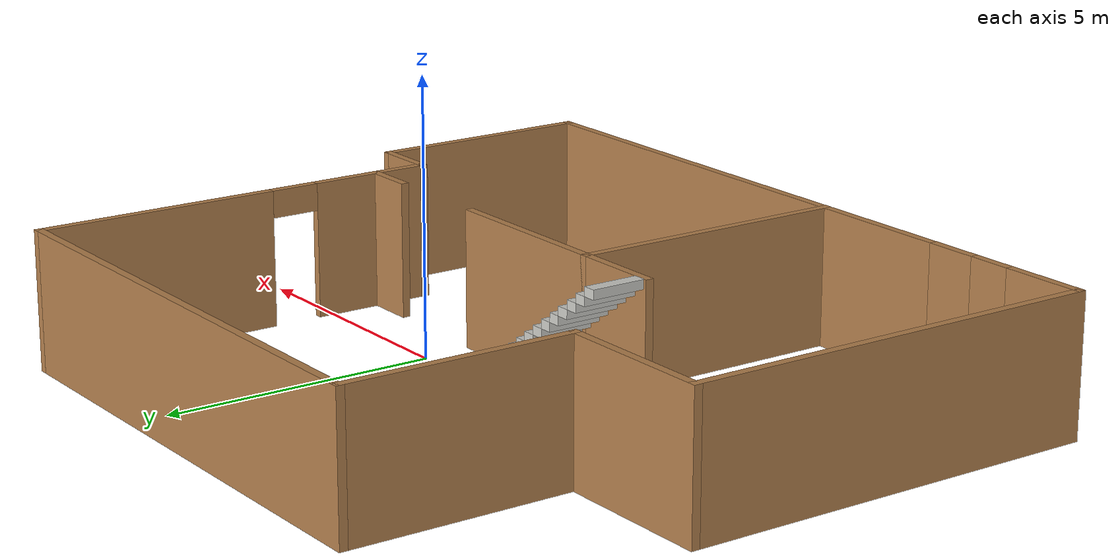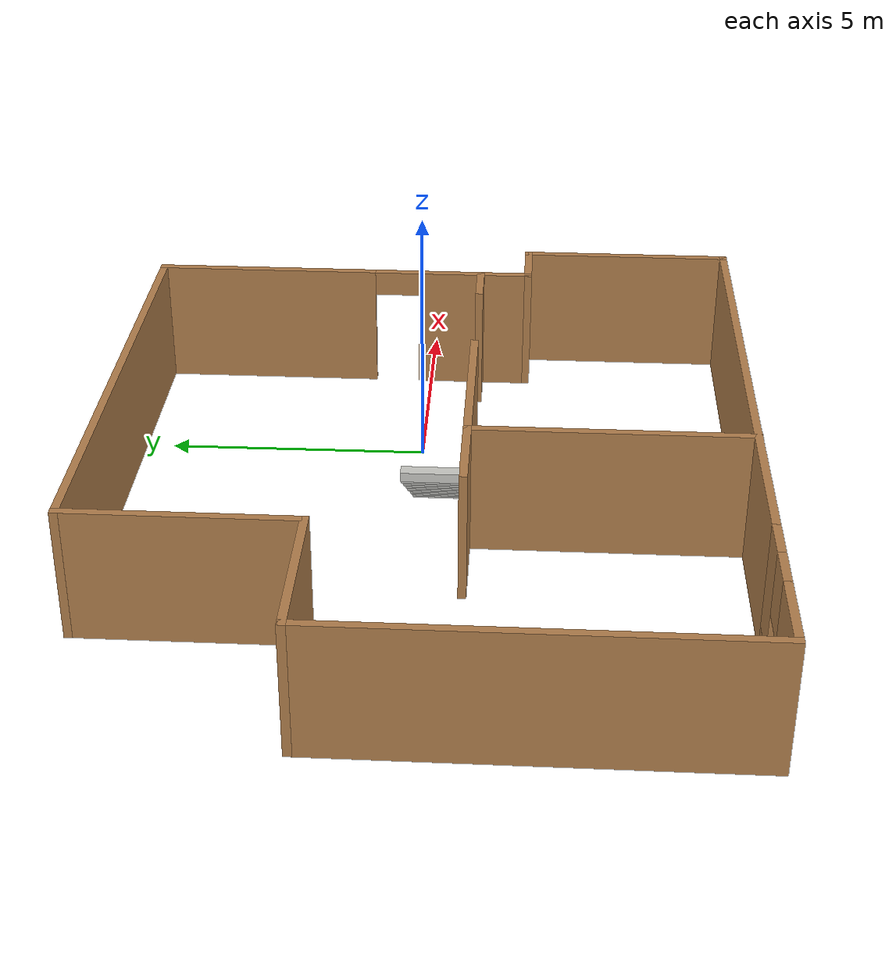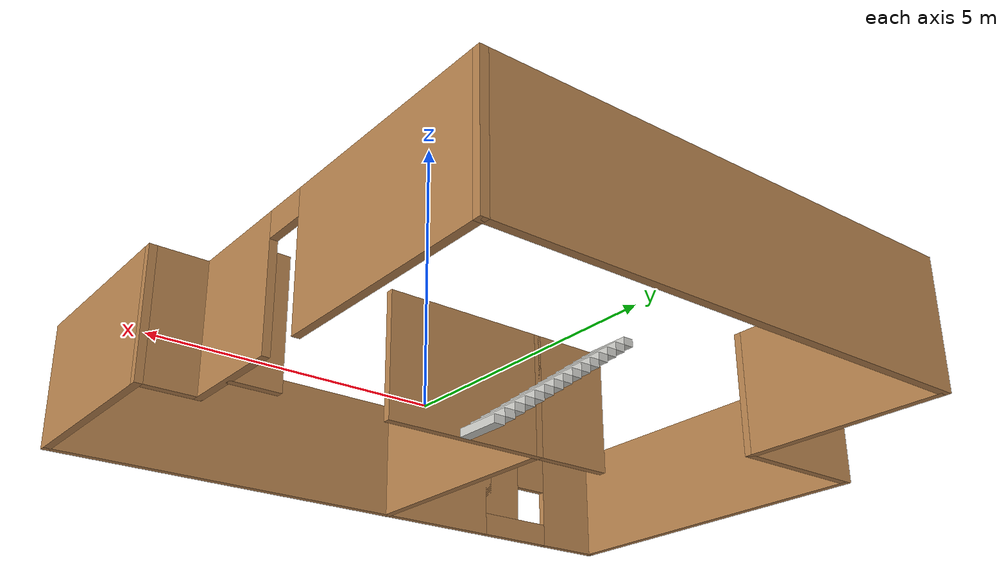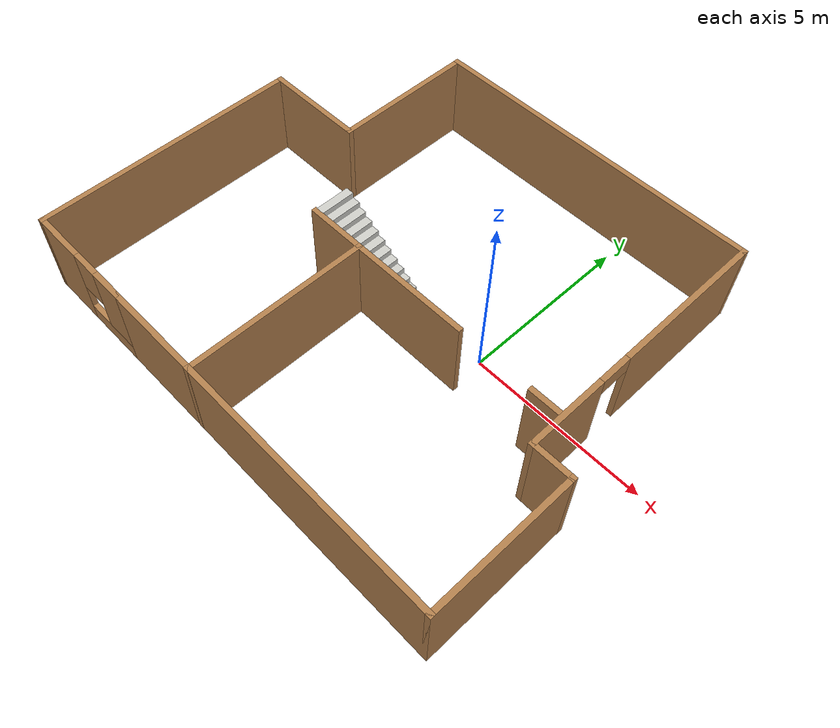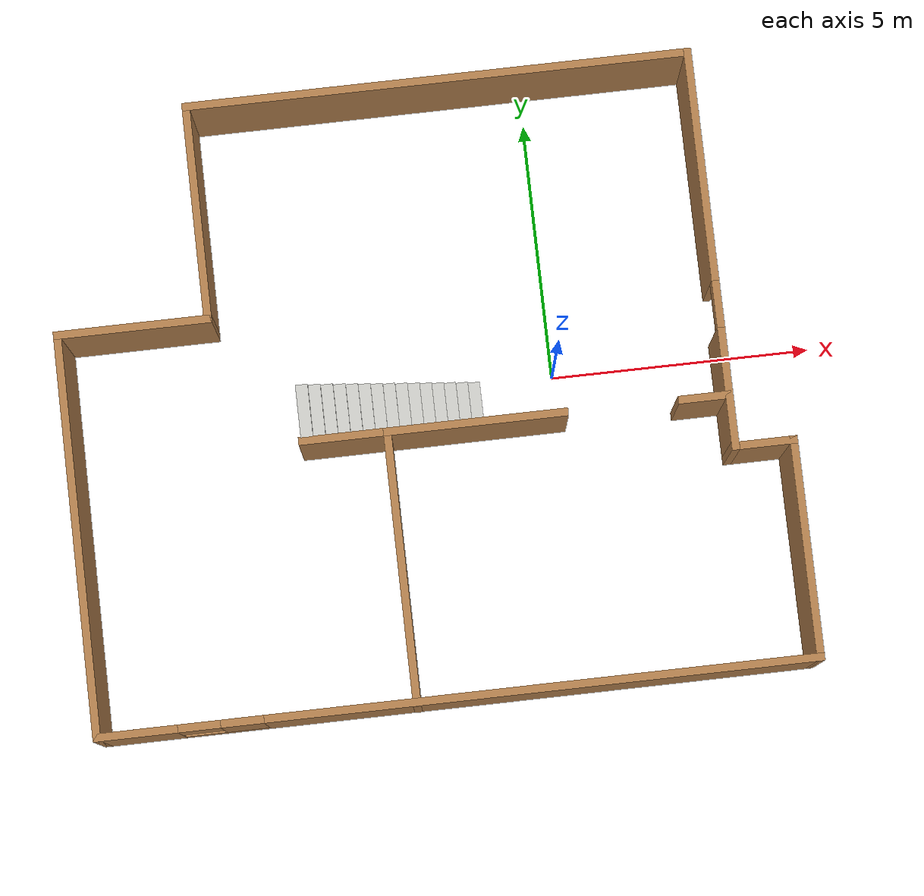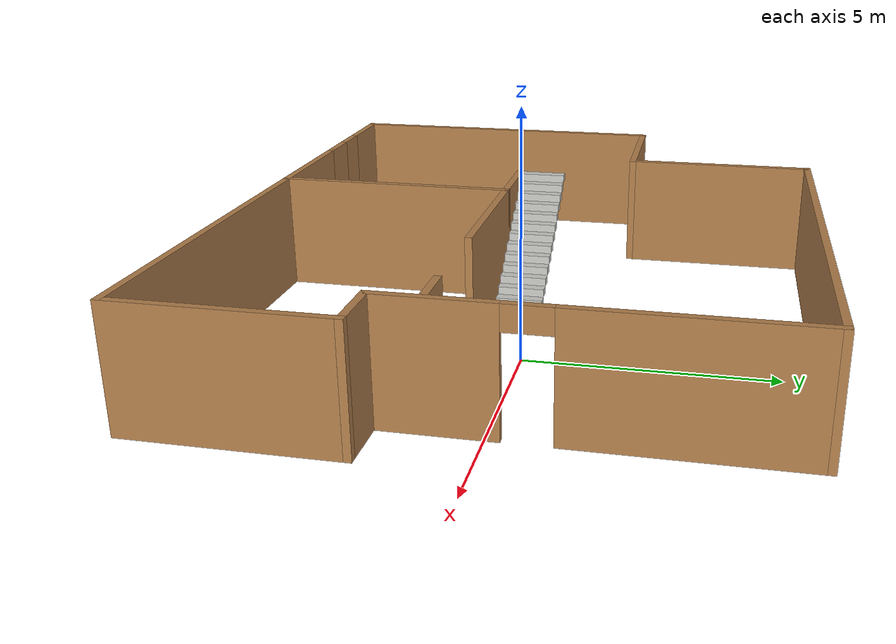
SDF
<?xml version='1.0'?>
<sdf version='1.6'>
  <model name='ambiente_simulacao'>
    <pose frame=''>-2.50677 -0.244712 0 0 -0 0</pose>
    <link name='Stairs_0'>
      <visual name='Stairs_0_Visual_0'>
        <pose frame=''>0.964089 -0.187541 0.083333 0 -0 -1.5708</pose>
        <geometry>
          <box>
            <size>1 0.233333 0.166667</size>
          </box>
        </geometry>
        <material>
          <script>
            <uri>file://media/materials/scripts/gazebo.material</uri>
            <name>Gazebo/CeilingTiled</name>
          </script>
          <ambient>1 1 1 1</ambient>
        </material>
      </visual>
      <collision name='Stairs_0_Collision_0'>
        <geometry>
          <box>
            <size>1 0.233333 0.166667</size>
          </box>
        </geometry>
        <pose frame=''>0.964089 -0.187541 0.083333 0 -0 -1.5708</pose>
      </collision>
      <visual name='Stairs_0_Visual_1'>
        <pose frame=''>0.730756 -0.187541 0.25 0 -0 -1.5708</pose>
        <geometry>
          <box>
            <size>1 0.233333 0.166667</size>
          </box>
        </geometry>
        <material>
          <script>
            <uri>file://media/materials/scripts/gazebo.material</uri>
            <name>Gazebo/CeilingTiled</name>
          </script>
          <ambient>1 1 1 1</ambient>
        </material>
      </visual>
      <collision name='Stairs_0_Collision_1'>
        <geometry>
          <box>
            <size>1 0.233333 0.166667</size>
          </box>
        </geometry>
        <pose frame=''>0.730756 -0.187541 0.25 0 -0 -1.5708</pose>
      </collision>
      <visual name='Stairs_0_Visual_2'>
        <pose frame=''>0.497422 -0.187541 0.416667 0 -0 -1.5708</pose>
        <geometry>
          <box>
            <size>1 0.233333 0.166667</size>
          </box>
        </geometry>
        <material>
          <script>
            <uri>file://media/materials/scripts/gazebo.material</uri>
            <name>Gazebo/CeilingTiled</name>
          </script>
          <ambient>1 1 1 1</ambient>
        </material>
      </visual>
      <collision name='Stairs_0_Collision_2'>
        <geometry>
          <box>
            <size>1 0.233333 0.166667</size>
          </box>
        </geometry>
        <pose frame=''>0.497422 -0.187541 0.416667 0 -0 -1.5708</pose>
      </collision>
      <visual name='Stairs_0_Visual_3'>
        <pose frame=''>0.264089 -0.187541 0.583333 0 -0 -1.5708</pose>
        <geometry>
          <box>
            <size>1 0.233333 0.166667</size>
          </box>
        </geometry>
        <material>
          <script>
            <uri>file://media/materials/scripts/gazebo.material</uri>
            <name>Gazebo/CeilingTiled</name>
          </script>
          <ambient>1 1 1 1</ambient>
        </material>
      </visual>
      <collision name='Stairs_0_Collision_3'>
        <geometry>
          <box>
            <size>1 0.233333 0.166667</size>
          </box>
        </geometry>
        <pose frame=''>0.264089 -0.187541 0.583333 0 -0 -1.5708</pose>
      </collision>
      <visual name='Stairs_0_Visual_4'>
        <pose frame=''>0.030756 -0.187541 0.75 0 -0 -1.5708</pose>
        <geometry>
          <box>
            <size>1 0.233333 0.166667</size>
          </box>
        </geometry>
        <material>
          <script>
            <uri>file://media/materials/scripts/gazebo.material</uri>
            <name>Gazebo/CeilingTiled</name>
          </script>
          <ambient>1 1 1 1</ambient>
        </material>
      </visual>
      <collision name='Stairs_0_Collision_4'>
        <geometry>
          <box>
            <size>1 0.233333 0.166667</size>
          </box>
        </geometry>
        <pose frame=''>0.030756 -0.187541 0.75 0 -0 -1.5708</pose>
      </collision>
      <visual name='Stairs_0_Visual_5'>
        <pose frame=''>-0.202578 -0.187541 0.916667 0 -0 -1.5708</pose>
        <geometry>
          <box>
            <size>1 0.233333 0.166667</size>
          </box>
        </geometry>
        <material>
          <script>
            <uri>file://media/materials/scripts/gazebo.material</uri>
            <name>Gazebo/CeilingTiled</name>
          </script>
          <ambient>1 1 1 1</ambient>
        </material>
      </visual>
      <collision name='Stairs_0_Collision_5'>
        <geometry>
          <box>
            <size>1 0.233333 0.166667</size>
          </box>
        </geometry>
        <pose frame=''>-0.202578 -0.187541 0.916667 0 -0 -1.5708</pose>
      </collision>
      <visual name='Stairs_0_Visual_6'>
        <pose frame=''>-0.435911 -0.187541 1.08333 0 -0 -1.5708</pose>
        <geometry>
          <box>
            <size>1 0.233333 0.166667</size>
          </box>
        </geometry>
        <material>
          <script>
            <uri>file://media/materials/scripts/gazebo.material</uri>
            <name>Gazebo/CeilingTiled</name>
          </script>
          <ambient>1 1 1 1</ambient>
        </material>
      </visual>
      <collision name='Stairs_0_Collision_6'>
        <geometry>
          <box>
            <size>1 0.233333 0.166667</size>
          </box>
        </geometry>
        <pose frame=''>-0.435911 -0.187541 1.08333 0 -0 -1.5708</pose>
      </collision>
      <visual name='Stairs_0_Visual_7'>
        <pose frame=''>-0.669244 -0.187541 1.25 0 -0 -1.5708</pose>
        <geometry>
          <box>
            <size>1 0.233333 0.166667</size>
          </box>
        </geometry>
        <material>
          <script>
            <uri>file://media/materials/scripts/gazebo.material</uri>
            <name>Gazebo/CeilingTiled</name>
          </script>
          <ambient>1 1 1 1</ambient>
        </material>
      </visual>
      <collision name='Stairs_0_Collision_7'>
        <geometry>
          <box>
            <size>1 0.233333 0.166667</size>
          </box>
        </geometry>
        <pose frame=''>-0.669244 -0.187541 1.25 0 -0 -1.5708</pose>
      </collision>
      <visual name='Stairs_0_Visual_8'>
        <pose frame=''>-0.902578 -0.187541 1.41667 0 -0 -1.5708</pose>
        <geometry>
          <box>
            <size>1 0.233333 0.166667</size>
          </box>
        </geometry>
        <material>
          <script>
            <uri>file://media/materials/scripts/gazebo.material</uri>
            <name>Gazebo/CeilingTiled</name>
          </script>
          <ambient>1 1 1 1</ambient>
        </material>
      </visual>
      <collision name='Stairs_0_Collision_8'>
        <geometry>
          <box>
            <size>1 0.233333 0.166667</size>
          </box>
        </geometry>
        <pose frame=''>-0.902578 -0.187541 1.41667 0 -0 -1.5708</pose>
      </collision>
      <visual name='Stairs_0_Visual_9'>
        <pose frame=''>-1.13591 -0.187541 1.58333 0 -0 -1.5708</pose>
        <geometry>
          <box>
            <size>1 0.233333 0.166667</size>
          </box>
        </geometry>
        <material>
          <script>
            <uri>file://media/materials/scripts/gazebo.material</uri>
            <name>Gazebo/CeilingTiled</name>
          </script>
          <ambient>1 1 1 1</ambient>
        </material>
      </visual>
      <collision name='Stairs_0_Collision_9'>
        <geometry>
          <box>
            <size>1 0.233333 0.166667</size>
          </box>
        </geometry>
        <pose frame=''>-1.13591 -0.187541 1.58333 0 -0 -1.5708</pose>
      </collision>
      <visual name='Stairs_0_Visual_10'>
        <pose frame=''>-1.36924 -0.187541 1.75 0 -0 -1.5708</pose>
        <geometry>
          <box>
            <size>1 0.233333 0.166667</size>
          </box>
        </geometry>
        <material>
          <script>
            <uri>file://media/materials/scripts/gazebo.material</uri>
            <name>Gazebo/CeilingTiled</name>
          </script>
          <ambient>1 1 1 1</ambient>
        </material>
      </visual>
      <collision name='Stairs_0_Collision_10'>
        <geometry>
          <box>
            <size>1 0.233333 0.166667</size>
          </box>
        </geometry>
        <pose frame=''>-1.36924 -0.187541 1.75 0 -0 -1.5708</pose>
      </collision>
      <visual name='Stairs_0_Visual_11'>
        <pose frame=''>-1.60258 -0.187541 1.91667 0 -0 -1.5708</pose>
        <geometry>
          <box>
            <size>1 0.233333 0.166667</size>
          </box>
        </geometry>
        <material>
          <script>
            <uri>file://media/materials/scripts/gazebo.material</uri>
            <name>Gazebo/CeilingTiled</name>
          </script>
          <ambient>1 1 1 1</ambient>
        </material>
      </visual>
      <collision name='Stairs_0_Collision_11'>
        <geometry>
          <box>
            <size>1 0.233333 0.166667</size>
          </box>
        </geometry>
        <pose frame=''>-1.60258 -0.187541 1.91667 0 -0 -1.5708</pose>
      </collision>
      <visual name='Stairs_0_Visual_12'>
        <pose frame=''>-1.83591 -0.187541 2.08333 0 -0 -1.5708</pose>
        <geometry>
          <box>
            <size>1 0.233333 0.166667</size>
          </box>
        </geometry>
        <material>
          <script>
            <uri>file://media/materials/scripts/gazebo.material</uri>
            <name>Gazebo/CeilingTiled</name>
          </script>
          <ambient>1 1 1 1</ambient>
        </material>
      </visual>
      <collision name='Stairs_0_Collision_12'>
        <geometry>
          <box>
            <size>1 0.233333 0.166667</size>
          </box>
        </geometry>
        <pose frame=''>-1.83591 -0.187541 2.08333 0 -0 -1.5708</pose>
      </collision>
      <visual name='Stairs_0_Visual_13'>
        <pose frame=''>-2.06925 -0.187541 2.25 0 -0 -1.5708</pose>
        <geometry>
          <box>
            <size>1 0.233333 0.166667</size>
          </box>
        </geometry>
        <material>
          <script>
            <uri>file://media/materials/scripts/gazebo.material</uri>
            <name>Gazebo/CeilingTiled</name>
          </script>
          <ambient>1 1 1 1</ambient>
        </material>
      </visual>
      <collision name='Stairs_0_Collision_13'>
        <geometry>
          <box>
            <size>1 0.233333 0.166667</size>
          </box>
        </geometry>
        <pose frame=''>-2.06925 -0.187541 2.25 0 -0 -1.5708</pose>
      </collision>
      <visual name='Stairs_0_Visual_14'>
        <pose frame=''>-2.30258 -0.187541 2.41667 0 -0 -1.5708</pose>
        <geometry>
          <box>
            <size>1 0.233333 0.166667</size>
          </box>
        </geometry>
        <material>
          <script>
            <uri>file://media/materials/scripts/gazebo.material</uri>
            <name>Gazebo/CeilingTiled</name>
          </script>
          <ambient>1 1 1 1</ambient>
        </material>
      </visual>
      <collision name='Stairs_0_Collision_14'>
        <geometry>
          <box>
            <size>1 0.233333 0.166667</size>
          </box>
        </geometry>
        <pose frame=''>-2.30258 -0.187541 2.41667 0 -0 -1.5708</pose>
      </collision>
    </link>
    <link name='Wall_10'>
      <collision name='Wall_10_Collision'>
        <geometry>
          <box>
            <size>4.25 0.15 2.5</size>
          </box>
        </geometry>
        <pose frame=''>0 0 1.25 0 -0 0</pose>
      </collision>
      <visual name='Wall_10_Visual'>
        <pose frame=''>0 0 1.25 0 -0 0</pose>
        <geometry>
          <box>
            <size>4.25 0.15 2.5</size>
          </box>
        </geometry>
        <material>
          <script>
            <uri>file://media/materials/scripts/gazebo.material</uri>
            <name>Gazebo/Wood</name>
          </script>
          <ambient>1 1 1 1</ambient>
        </material>
      </visual>
      <pose frame=''>-3.925 3.80287 0 0 0 -1.5708</pose>
    </link>
    <link name='Wall_11'>
      <collision name='Wall_11_Collision'>
        <geometry>
          <box>
            <size>3 0.15 2.5</size>
          </box>
        </geometry>
        <pose frame=''>0 0 1.25 0 -0 0</pose>
      </collision>
      <visual name='Wall_11_Visual'>
        <pose frame=''>0 0 1.25 0 -0 0</pose>
        <geometry>
          <box>
            <size>3 0.15 2.5</size>
          </box>
        </geometry>
        <material>
          <script>
            <uri>file://media/materials/scripts/gazebo.material</uri>
            <name>Gazebo/Wood</name>
          </script>
          <ambient>1 1 1 1</ambient>
        </material>
      </visual>
      <pose frame=''>-5.35 1.75287 0 0 -0 3.14159</pose>
    </link>
    <link name='Wall_12'>
      <collision name='Wall_12_Collision'>
        <geometry>
          <box>
            <size>7.75 0.15 2.5</size>
          </box>
        </geometry>
        <pose frame=''>0 0 1.25 0 -0 0</pose>
      </collision>
      <visual name='Wall_12_Visual'>
        <pose frame=''>0 0 1.25 0 -0 0</pose>
        <geometry>
          <box>
            <size>7.75 0.15 2.5</size>
          </box>
        </geometry>
        <material>
          <script>
            <uri>file://media/materials/scripts/gazebo.material</uri>
            <name>Gazebo/Wood</name>
          </script>
          <ambient>1 1 1 1</ambient>
        </material>
      </visual>
      <pose frame=''>-6.775 -2.04713 0 0 0 -1.5708</pose>
    </link>
    <link name='Wall_13'>
      <pose frame=''>-5.175 -5.84713 0 0 -0 0</pose>
      <visual name='Wall_13_Visual_0'>
        <pose frame=''>-0.881361 0 1.25 0 -0 0</pose>
        <geometry>
          <box>
            <size>1.58728 0.15 2.5</size>
          </box>
        </geometry>
        <material>
          <script>
            <uri>file://media/materials/scripts/gazebo.material</uri>
            <name>Gazebo/Wood</name>
          </script>
          <ambient>1 1 1 1</ambient>
        </material>
      </visual>
      <collision name='Wall_13_Collision_0'>
        <geometry>
          <box>
            <size>1.58728 0.15 2.5</size>
          </box>
        </geometry>
        <pose frame=''>-0.881361 0 1.25 0 -0 0</pose>
      </collision>
      <visual name='Wall_13_Visual_1'>
        <pose frame=''>0.793639 0 0.25 0 -0 0</pose>
        <geometry>
          <box>
            <size>1.76272 0.15 0.5</size>
          </box>
        </geometry>
        <material>
          <script>
            <uri>file://media/materials/scripts/gazebo.material</uri>
            <name>Gazebo/Wood</name>
          </script>
          <ambient>1 1 1 1</ambient>
        </material>
      </visual>
      <collision name='Wall_13_Collision_1'>
        <geometry>
          <box>
            <size>1.76272 0.15 0.5</size>
          </box>
        </geometry>
        <pose frame=''>0.793639 0 0.25 0 -0 0</pose>
      </collision>
      <visual name='Wall_13_Visual_2'>
        <pose frame=''>1.19364 0 1.5 0 -0 0</pose>
        <geometry>
          <box>
            <size>0.962723 0.15 2</size>
          </box>
        </geometry>
        <material>
          <script>
            <uri>file://media/materials/scripts/gazebo.material</uri>
            <name>Gazebo/Wood</name>
          </script>
          <ambient>1 1 1 1</ambient>
        </material>
      </visual>
      <collision name='Wall_13_Collision_2'>
        <geometry>
          <box>
            <size>0.962723 0.15 2</size>
          </box>
        </geometry>
        <pose frame=''>1.19364 0 1.5 0 -0 0</pose>
      </collision>
      <visual name='Wall_13_Visual_3'>
        <pose frame=''>0.312277 0 1.9 0 -0 0</pose>
        <geometry>
          <box>
            <size>0.8 0.15 1.2</size>
          </box>
        </geometry>
        <material>
          <script>
            <uri>file://media/materials/scripts/gazebo.material</uri>
            <name>Gazebo/Wood</name>
          </script>
          <ambient>1 1 1 1</ambient>
        </material>
      </visual>
      <collision name='Wall_13_Collision_3'>
        <geometry>
          <box>
            <size>0.8 0.15 1.2</size>
          </box>
        </geometry>
        <pose frame=''>0.312277 0 1.9 0 -0 0</pose>
      </collision>
    </link>
    <link name='Wall_15'>
      <collision name='Wall_15_Collision'>
        <geometry>
          <box>
            <size>5.25 0.15 2.5</size>
          </box>
        </geometry>
        <pose frame=''>0 0 1.25 0 -0 0</pose>
      </collision>
      <visual name='Wall_15_Visual'>
        <pose frame=''>0 0 1.25 0 -0 0</pose>
        <geometry>
          <box>
            <size>5.25 0.15 2.5</size>
          </box>
        </geometry>
        <material>
          <script>
            <uri>file://media/materials/scripts/gazebo.material</uri>
            <name>Gazebo/Wood</name>
          </script>
          <ambient>1 1 1 1</ambient>
        </material>
      </visual>
      <pose frame=''>-0.794222 -3.30287 0 0 -0 1.5708</pose>
    </link>
    <link name='Wall_16'>
      <collision name='Wall_16_Collision'>
        <geometry>
          <box>
            <size>1.75 0.15 2.5</size>
          </box>
        </geometry>
        <pose frame=''>0 0 1.25 0 -0 0</pose>
      </collision>
      <visual name='Wall_16_Visual'>
        <pose frame=''>0 0 1.25 0 -0 0</pose>
        <geometry>
          <box>
            <size>1.75 0.15 2.5</size>
          </box>
        </geometry>
        <material>
          <script>
            <uri>file://media/materials/scripts/gazebo.material</uri>
            <name>Gazebo/Wood</name>
          </script>
          <ambient>1 1 1 1</ambient>
        </material>
      </visual>
      <pose frame=''>-1.59422 -0.75287 0 0 -0 3.14159</pose>
    </link>
    <link name='Wall_18'>
      <collision name='Wall_18_Collision'>
        <geometry>
          <box>
            <size>3.5 0.15 2.5</size>
          </box>
        </geometry>
        <pose frame=''>0 0 1.25 0 -0 0</pose>
      </collision>
      <visual name='Wall_18_Visual'>
        <pose frame=''>0 0 1.25 0 -0 0</pose>
        <geometry>
          <box>
            <size>3.5 0.15 2.5</size>
          </box>
        </geometry>
        <material>
          <script>
            <uri>file://media/materials/scripts/gazebo.material</uri>
            <name>Gazebo/Wood</name>
          </script>
          <ambient>1 1 1 1</ambient>
        </material>
      </visual>
      <pose frame=''>0.880778 -0.75287 0 0 -0 0</pose>
    </link>
    <link name='Wall_22'>
      <collision name='Wall_22_Collision'>
        <geometry>
          <box>
            <size>1 0.15 2.5</size>
          </box>
        </geometry>
        <pose frame=''>0 0 1.25 0 -0 0</pose>
      </collision>
      <visual name='Wall_22_Visual'>
        <pose frame=''>0 0 1.25 0 -0 0</pose>
        <geometry>
          <box>
            <size>1 0.15 2.5</size>
          </box>
        </geometry>
        <material>
          <script>
            <uri>file://media/materials/scripts/gazebo.material</uri>
            <name>Gazebo/Wood</name>
          </script>
          <ambient>1 1 1 1</ambient>
        </material>
      </visual>
      <pose frame=''>5.21024 -0.7668 0 0 -0 3.14159</pose>
    </link>
    <link name='Wall_5'>
      <collision name='Wall_5_Collision'>
        <geometry>
          <box>
            <size>10.5 0.15 2.5</size>
          </box>
        </geometry>
        <pose frame=''>0 0 1.25 0 -0 0</pose>
      </collision>
      <visual name='Wall_5_Visual'>
        <pose frame=''>0 0 1.25 0 -0 0</pose>
        <geometry>
          <box>
            <size>10.5 0.15 2.5</size>
          </box>
        </geometry>
        <material>
          <script>
            <uri>file://media/materials/scripts/gazebo.material</uri>
            <name>Gazebo/Wood</name>
          </script>
          <ambient>1 1 1 1</ambient>
        </material>
      </visual>
      <pose frame=''>1.6 -5.84713 0 0 -0 0</pose>
    </link>
    <link name='Wall_6'>
      <collision name='Wall_6_Collision'>
        <geometry>
          <box>
            <size>4.25 0.15 2.5</size>
          </box>
        </geometry>
        <pose frame=''>0 0 1.25 0 -0 0</pose>
      </collision>
      <visual name='Wall_6_Visual'>
        <pose frame=''>0 0 1.25 0 -0 0</pose>
        <geometry>
          <box>
            <size>4.25 0.15 2.5</size>
          </box>
        </geometry>
        <material>
          <script>
            <uri>file://media/materials/scripts/gazebo.material</uri>
            <name>Gazebo/Wood</name>
          </script>
          <ambient>1 1 1 1</ambient>
        </material>
      </visual>
      <pose frame=''>6.775 -3.79713 0 0 -0 1.5708</pose>
    </link>
    <link name='Wall_7'>
      <collision name='Wall_7_Collision'>
        <geometry>
          <box>
            <size>1.25 0.15 2.5</size>
          </box>
        </geometry>
        <pose frame=''>0 0 1.25 0 -0 0</pose>
      </collision>
      <visual name='Wall_7_Visual'>
        <pose frame=''>0 0 1.25 0 -0 0</pose>
        <geometry>
          <box>
            <size>1.25 0.15 2.5</size>
          </box>
        </geometry>
        <material>
          <script>
            <uri>file://media/materials/scripts/gazebo.material</uri>
            <name>Gazebo/Wood</name>
          </script>
          <ambient>1 1 1 1</ambient>
        </material>
      </visual>
      <pose frame=''>6.225 -1.74713 0 0 -0 3.14159</pose>
    </link>
    <link name='Wall_8'>
      <pose frame=''>5.675 2.05287 0 0 -0 1.5708</pose>
      <visual name='Wall_8_Visual_0'>
        <pose frame=''>-2.70456 0 1.25 0 -0 0</pose>
        <geometry>
          <box>
            <size>2.34088 0.15 2.5</size>
          </box>
        </geometry>
        <material>
          <script>
            <uri>file://media/materials/scripts/gazebo.material</uri>
            <name>Gazebo/Wood</name>
          </script>
          <ambient>1 1 1 1</ambient>
        </material>
      </visual>
      <collision name='Wall_8_Collision_0'>
        <geometry>
          <box>
            <size>2.34088 0.15 2.5</size>
          </box>
        </geometry>
        <pose frame=''>-2.70456 0 1.25 0 -0 0</pose>
      </collision>
      <visual name='Wall_8_Visual_1'>
        <pose frame=''>1.62044 0 1.25 0 -0 0</pose>
        <geometry>
          <box>
            <size>4.50912 0.15 2.5</size>
          </box>
        </geometry>
        <material>
          <script>
            <uri>file://media/materials/scripts/gazebo.material</uri>
            <name>Gazebo/Wood</name>
          </script>
          <ambient>1 1 1 1</ambient>
        </material>
      </visual>
      <collision name='Wall_8_Collision_1'>
        <geometry>
          <box>
            <size>4.50912 0.15 2.5</size>
          </box>
        </geometry>
        <pose frame=''>1.62044 0 1.25 0 -0 0</pose>
      </collision>
      <visual name='Wall_8_Visual_2'>
        <pose frame=''>-1.08412 0 2.25 0 -0 0</pose>
        <geometry>
          <box>
            <size>0.9 0.15 0.5</size>
          </box>
        </geometry>
        <material>
          <script>
            <uri>file://media/materials/scripts/gazebo.material</uri>
            <name>Gazebo/Wood</name>
          </script>
          <ambient>1 1 1 1</ambient>
        </material>
      </visual>
      <collision name='Wall_8_Collision_2'>
        <geometry>
          <box>
            <size>0.9 0.15 0.5</size>
          </box>
        </geometry>
        <pose frame=''>-1.08412 0 2.25 0 -0 0</pose>
      </collision>
    </link>
    <link name='Wall_9'>
      <collision name='Wall_9_Collision'>
        <geometry>
          <box>
            <size>9.75 0.15 2.5</size>
          </box>
        </geometry>
        <pose frame=''>0 0 1.25 0 -0 0</pose>
      </collision>
      <visual name='Wall_9_Visual'>
        <pose frame=''>0 0 1.25 0 -0 0</pose>
        <geometry>
          <box>
            <size>9.75 0.15 2.5</size>
          </box>
        </geometry>
        <material>
          <script>
            <uri>file://media/materials/scripts/gazebo.material</uri>
            <name>Gazebo/Wood</name>
          </script>
          <ambient>1 1 1 1</ambient>
        </material>
      </visual>
      <pose frame=''>0.875 5.85287 0 0 -0 3.14159</pose>
    </link>
    <static>1</static>
  </model>
</sdf>
